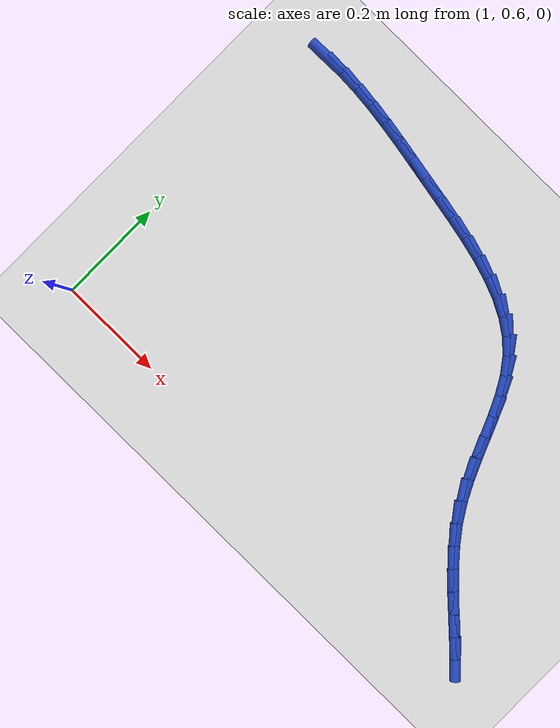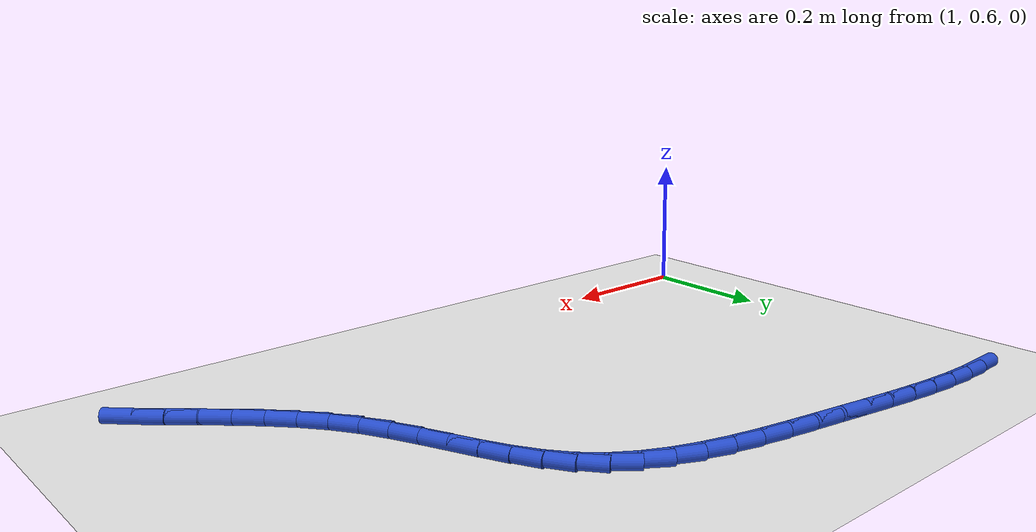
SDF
<sdf version="1.6">
 <world name="default">
  <model name="ground_plane">
   <static>1</static>
   <link name="link">
    <collision name="collision">
     <geometry><plane><normal>0 0 1</normal><size>100 100</size></plane></geometry>
     <surface><friction><ode><mu>100</mu><mu2>50</mu2></ode></friction></surface>
    </collision>
    <visual name="visual">
     <cast_shadows>0</cast_shadows>
     <geometry><plane><normal>0 0 1</normal><size>100 100</size></plane></geometry>
     <material>
      <script><uri>file://media/materials/scripts/gazebo.material</uri><name>Gazebo/WhiteGlow</name></script>
     </material>
    </visual>
   </link>
  </model>
  <model name="line">
   <link name="link_44">
    <pose>1.0340663692074799 1.2204611360111166 0.01 0 1.57 0.016741684028600965</pose>
    <collision name="collision">
     <geometry><cylinder><radius>0.01</radius><length>0.08</length></cylinder></geometry>
    </collision>
    <visual name="visual">
     <material>
      <script><name>Gazebo/Blue</name><uri>file://media/materials/scripts/gazebo.material</uri></script>
     </material>
     <geometry><cylinder><radius>0.01</radius><length>0.08</length></cylinder></geometry>
    </visual>
   </link>
   <link name="link_45">
    <pose>1.0718235762218329 1.2210933143050073 0.01 0 1.57 -0.04492203032472835</pose>
    <collision name="collision">
     <geometry><cylinder><radius>0.01</radius><length>0.08</length></cylinder></geometry>
    </collision>
    <visual name="visual">
     <material>
      <script><name>Gazebo/Blue</name><uri>file://media/materials/scripts/gazebo.material</uri></script>
     </material>
     <geometry><cylinder><radius>0.01</radius><length>0.08</length></cylinder></geometry>
    </visual>
   </link>
   <link name="link_46">
    <pose>1.1104504544521419 1.2193569483636206 0.01 0 1.57 -0.0938753605507853</pose>
    <collision name="collision">
     <geometry><cylinder><radius>0.01</radius><length>0.08</length></cylinder></geometry>
    </collision>
    <visual name="visual">
     <material>
      <script><name>Gazebo/Blue</name><uri>file://media/materials/scripts/gazebo.material</uri></script>
     </material>
     <geometry><cylinder><radius>0.01</radius><length>0.08</length></cylinder></geometry>
    </visual>
   </link>
   <link name="link_47">
    <pose>1.1498504941061134 1.2156473519855513 0.01 0 1.57 -0.13117724441278245</pose>
    <collision name="collision">
     <geometry><cylinder><radius>0.01</radius><length>0.08</length></cylinder></geometry>
    </collision>
    <visual name="visual">
     <material>
      <script><name>Gazebo/Blue</name><uri>file://media/materials/scripts/gazebo.material</uri></script>
     </material>
     <geometry><cylinder><radius>0.01</radius><length>0.08</length></cylinder></geometry>
    </visual>
   </link>
   <link name="link_48">
    <pose>1.1899271853914535 1.210359838969393 0.01 0 1.57 -0.1578163148414161</pose>
    <collision name="collision">
     <geometry><cylinder><radius>0.01</radius><length>0.08</length></cylinder></geometry>
    </collision>
    <visual name="visual">
     <material>
      <script><name>Gazebo/Blue</name><uri>file://media/materials/scripts/gazebo.material</uri></script>
     </material>
     <geometry><cylinder><radius>0.01</radius><length>0.08</length></cylinder></geometry>
    </visual>
   </link>
   <link name="link_49">
    <pose>1.2305840185158705 1.2038897231137407 0.01 0 1.57 -0.17460908920680784</pose>
    <collision name="collision">
     <geometry><cylinder><radius>0.01</radius><length>0.08</length></cylinder></geometry>
    </collision>
    <visual name="visual">
     <material>
      <script><name>Gazebo/Blue</name><uri>file://media/materials/scripts/gazebo.material</uri></script>
     </material>
     <geometry><cylinder><radius>0.01</radius><length>0.08</length></cylinder></geometry>
    </visual>
   </link>
   <link name="link_50">
    <pose>1.2717244836870691 1.1966323182171879 0.01 0 1.57 -0.18215809549075143</pose>
    <collision name="collision">
     <geometry><cylinder><radius>0.01</radius><length>0.08</length></cylinder></geometry>
    </collision>
    <visual name="visual">
     <material>
      <script><name>Gazebo/Blue</name><uri>file://media/materials/scripts/gazebo.material</uri></script>
     </material>
     <geometry><cylinder><radius>0.01</radius><length>0.08</length></cylinder></geometry>
    </visual>
   </link>
   <link name="link_51">
    <pose>1.3132520711127573 1.1889829380783292 0.01 0 1.57 -0.18146093318876846</pose>
    <collision name="collision">
     <geometry><cylinder><radius>0.01</radius><length>0.08</length></cylinder></geometry>
    </collision>
    <visual name="visual">
     <material>
      <script><name>Gazebo/Blue</name><uri>file://media/materials/scripts/gazebo.material</uri></script>
     </material>
     <geometry><cylinder><radius>0.01</radius><length>0.08</length></cylinder></geometry>
    </visual>
   </link>
   <link name="link_52">
    <pose>1.3550585231241778 1.1813123220194042 0.01 0 1.57 -0.1848133084151161</pose>
    <collision name="collision">
     <geometry><cylinder><radius>0.01</radius><length>0.08</length></cylinder></geometry>
    </collision>
    <visual name="visual">
     <material>
      <script><name>Gazebo/Blue</name><uri>file://media/materials/scripts/gazebo.material</uri></script>
     </material>
     <geometry><cylinder><radius>0.01</radius><length>0.08</length></cylinder></geometry>
    </visual>
   </link>
   <link name="link_53">
    <pose>1.3968045992586018 1.1735080342776658 0.01 0 1.57 -0.20357956919629636</pose>
    <collision name="collision">
     <geometry><cylinder><radius>0.01</radius><length>0.08</length></cylinder></geometry>
    </collision>
    <visual name="visual">
     <material>
      <script><name>Gazebo/Blue</name><uri>file://media/materials/scripts/gazebo.material</uri></script>
     </material>
     <geometry><cylinder><radius>0.01</radius><length>0.08</length></cylinder></geometry>
    </visual>
   </link>
   <link name="link_54">
    <pose>1.437939967465345 1.165016072884515 0.01 0 1.57 -0.23927705951594538</pose>
    <collision name="collision">
     <geometry><cylinder><radius>0.01</radius><length>0.08</length></cylinder></geometry>
    </collision>
    <visual name="visual">
     <material>
      <script><name>Gazebo/Blue</name><uri>file://media/materials/scripts/gazebo.material</uri></script>
     </material>
     <geometry><cylinder><radius>0.01</radius><length>0.08</length></cylinder></geometry>
    </visual>
   </link>
   <link name="link_55">
    <pose>1.477906536174173 1.1552662043310993 0.01 0 1.57 -0.2940004978064411</pose>
    <collision name="collision">
     <geometry><cylinder><radius>0.01</radius><length>0.08</length></cylinder></geometry>
    </collision>
    <visual name="visual">
     <material>
      <script><name>Gazebo/Blue</name><uri>file://media/materials/scripts/gazebo.material</uri></script>
     </material>
     <geometry><cylinder><radius>0.01</radius><length>0.08</length></cylinder></geometry>
    </visual>
   </link>
   <link name="link_56">
    <pose>1.5161462138148498 1.1436881951085685 0.01 0 1.57 -0.3707463746853357</pose>
    <collision name="collision">
     <geometry><cylinder><radius>0.01</radius><length>0.08</length></cylinder></geometry>
    </collision>
    <visual name="visual">
     <material>
      <script><name>Gazebo/Blue</name><uri>file://media/materials/scripts/gazebo.material</uri></script>
     </material>
     <geometry><cylinder><radius>0.01</radius><length>0.08</length></cylinder></geometry>
    </visual>
   </link>
   <link name="link_57">
    <pose>1.552100908817142 1.12971181170807 0.01 0 1.57 -0.47300621422693206</pose>
    <collision name="collision">
     <geometry><cylinder><radius>0.01</radius><length>0.08</length></cylinder></geometry>
    </collision>
    <visual name="visual">
     <material>
      <script><name>Gazebo/Blue</name><uri>file://media/materials/scripts/gazebo.material</uri></script>
     </material>
     <geometry><cylinder><radius>0.01</radius><length>0.08</length></cylinder></geometry>
    </visual>
   </link>
   <link name="link_58">
    <pose>1.585212529610816 1.1127668206207537 0.01 0 1.57 -0.6036093452666672</pose>
    <collision name="collision">
     <geometry><cylinder><radius>0.01</radius><length>0.08</length></cylinder></geometry>
    </collision>
    <visual name="visual">
     <material>
      <script><name>Gazebo/Blue</name><uri>file://media/materials/scripts/gazebo.material</uri></script>
     </material>
     <geometry><cylinder><radius>0.01</radius><length>0.08</length></cylinder></geometry>
    </visual>
   </link>
   <link name="link_59">
    <pose>1.6149229846256352 1.092282988337768 0.01 0 1.57 -0.7622111997289494</pose>
    <collision name="collision">
     <geometry><cylinder><radius>0.01</radius><length>0.08</length></cylinder></geometry>
    </collision>
    <visual name="visual">
     <material>
      <script><name>Gazebo/Blue</name><uri>file://media/materials/scripts/gazebo.material</uri></script>
     </material>
     <geometry><cylinder><radius>0.01</radius><length>0.08</length></cylinder></geometry>
    </visual>
   </link>
   <link name="link_60">
    <pose>1.6406790133723932 1.0676945052042912 0.01 0 1.57 -0.9235636580012856</pose>
    <collision name="collision">
     <geometry><cylinder><radius>0.01</radius><length>0.08</length></cylinder></geometry>
    </collision>
    <visual name="visual">
     <material>
      <script><name>Gazebo/Blue</name><uri>file://media/materials/scripts/gazebo.material</uri></script>
     </material>
     <geometry><cylinder><radius>0.01</radius><length>0.08</length></cylinder></geometry>
    </visual>
   </link>
   <link name="link_61">
    <pose>1.6624396914387491 1.0389047112249352 0.01 0 1.57 -1.0451921639659627</pose>
    <collision name="collision">
     <geometry><cylinder><radius>0.01</radius><length>0.08</length></cylinder></geometry>
    </collision>
    <visual name="visual">
     <material>
      <script><name>Gazebo/Blue</name><uri>file://media/materials/scripts/gazebo.material</uri></script>
     </material>
     <geometry><cylinder><radius>0.01</radius><length>0.08</length></cylinder></geometry>
    </visual>
   </link>
   <link name="link_62">
    <pose>1.6811224693581241 1.006694536915134 0.01 0 1.57 -1.124542460160288</pose>
    <collision name="collision">
     <geometry><cylinder><radius>0.01</radius><length>0.08</length></cylinder></geometry>
    </collision>
    <visual name="visual">
     <material>
      <script><name>Gazebo/Blue</name><uri>file://media/materials/scripts/gazebo.material</uri></script>
     </material>
     <geometry><cylinder><radius>0.01</radius><length>0.08</length></cylinder></geometry>
    </visual>
   </link>
   <link name="link_63">
    <pose>1.6977499595748178 0.9719412102733669 0.01 0 1.57 -1.166216248263176</pose>
    <collision name="collision">
     <geometry><cylinder><radius>0.01</radius><length>0.08</length></cylinder></geometry>
    </collision>
    <visual name="visual">
     <material>
      <script><name>Gazebo/Blue</name><uri>file://media/materials/scripts/gazebo.material</uri></script>
     </material>
     <geometry><cylinder><radius>0.01</radius><length>0.08</length></cylinder></geometry>
    </visual>
   </link>
   <link name="link_64">
    <pose>1.7133447745331327 0.9355219592981138 0.01 0 1.57 -1.1741416441638826</pose>
    <collision name="collision">
     <geometry><cylinder><radius>0.01</radius><length>0.08</length></cylinder></geometry>
    </collision>
    <visual name="visual">
     <material>
      <script><name>Gazebo/Blue</name><uri>file://media/materials/scripts/gazebo.material</uri></script>
     </material>
     <geometry><cylinder><radius>0.01</radius><length>0.08</length></cylinder></geometry>
    </visual>
   </link>
   <link name="link_65">
    <pose>1.7289295266773694 0.8983140119878538 0.01 0 1.57 -1.150329468562992</pose>
    <collision name="collision">
     <geometry><cylinder><radius>0.01</radius><length>0.08</length></cylinder></geometry>
    </collision>
    <visual name="visual">
     <material>
      <script><name>Gazebo/Blue</name><uri>file://media/materials/scripts/gazebo.material</uri></script>
     </material>
     <geometry><cylinder><radius>0.01</radius><length>0.08</length></cylinder></geometry>
    </visual>
   </link>
   <link name="link_66">
    <pose>1.7455268284518297 0.8611945963410655 0.01 0 1.57 -1.0949294617589251</pose>
    <collision name="collision">
     <geometry><cylinder><radius>0.01</radius><length>0.08</length></cylinder></geometry>
    </collision>
    <visual name="visual">
     <material>
      <script><name>Gazebo/Blue</name><uri>file://media/materials/scripts/gazebo.material</uri></script>
     </material>
     <geometry><cylinder><radius>0.01</radius><length>0.08</length></cylinder></geometry>
    </visual>
   </link>
   <link name="link_67">
    <pose>1.7641592923008145 0.8250409403562292 0.01 0 1.57 -1.008140166666022</pose>
    <collision name="collision">
     <geometry><cylinder><radius>0.01</radius><length>0.08</length></cylinder></geometry>
    </collision>
    <visual name="visual">
     <material>
      <script><name>Gazebo/Blue</name><uri>file://media/materials/scripts/gazebo.material</uri></script>
     </material>
     <geometry><cylinder><radius>0.01</radius><length>0.08</length></cylinder></geometry>
    </visual>
   </link>
   <link name="link_68">
    <pose>1.7858133427315341 0.790705180252187 0.01 0 1.57 -0.9154972815583415</pose>
    <collision name="collision">
     <geometry><cylinder><radius>0.01</radius><length>0.08</length></cylinder></geometry>
    </collision>
    <visual name="visual">
     <material>
      <script><name>Gazebo/Blue</name><uri>file://media/materials/scripts/gazebo.material</uri></script>
     </material>
     <geometry><cylinder><radius>0.01</radius><length>0.08</length></cylinder></geometry>
    </visual>
   </link>
   <link name="link_69">
    <pose>1.8106118329384353 0.7584406742343712 0.01 0 1.57 -0.8436408665322391</pose>
    <collision name="collision">
     <geometry><cylinder><radius>0.01</radius><length>0.08</length></cylinder></geometry>
    </collision>
    <visual name="visual">
     <material>
      <script><name>Gazebo/Blue</name><uri>file://media/materials/scripts/gazebo.material</uri></script>
     </material>
     <geometry><cylinder><radius>0.01</radius><length>0.08</length></cylinder></geometry>
    </visual>
   </link>
   <link name="link_70">
    <pose>1.8377963191445261 0.7278897119815277 0.01 0 1.57 -0.7931637497516063</pose>
    <collision name="collision">
     <geometry><cylinder><radius>0.01</radius><length>0.08</length></cylinder></geometry>
    </collision>
    <visual name="visual">
     <material>
      <script><name>Gazebo/Blue</name><uri>file://media/materials/scripts/gazebo.material</uri></script>
     </material>
     <geometry><cylinder><radius>0.01</radius><length>0.08</length></cylinder></geometry>
    </visual>
   </link>
   <link name="link_71">
    <pose>1.8665686240451944 0.6986670329719905 0.01 0 1.57 -0.763232802464028</pose>
    <collision name="collision">
     <geometry><cylinder><radius>0.01</radius><length>0.08</length></cylinder></geometry>
    </collision>
    <visual name="visual">
     <material>
      <script><name>Gazebo/Blue</name><uri>file://media/materials/scripts/gazebo.material</uri></script>
     </material>
     <geometry><cylinder><radius>0.01</radius><length>0.08</length></cylinder></geometry>
    </visual>
   </link>
   <link name="link_72">
    <pose>1.8961305703358267 0.6703873766840953 0.01 0 1.57 -0.7534316393878276</pose>
    <collision name="collision">
     <geometry><cylinder><radius>0.01</radius><length>0.08</length></cylinder></geometry>
    </collision>
    <visual name="visual">
     <material>
      <script><name>Gazebo/Blue</name><uri>file://media/materials/scripts/gazebo.material</uri></script>
     </material>
     <geometry><cylinder><radius>0.01</radius><length>0.08</length></cylinder></geometry>
    </visual>
   </link>
   <link name="link_73">
    <pose>1.9256839807118105 0.6426654825961767 0.01 0 1.57 -0.7641333778552992</pose>
    <collision name="collision">
     <geometry><cylinder><radius>0.01</radius><length>0.08</length></cylinder></geometry>
    </collision>
    <visual name="visual">
     <material>
      <script><name>Gazebo/Blue</name><uri>file://media/materials/scripts/gazebo.material</uri></script>
     </material>
     <geometry><cylinder><radius>0.01</radius><length>0.08</length></cylinder></geometry>
    </visual>
   </link>
   <link name="link_74">
    <pose>1.9544306778685336 0.6151160901865691 0.01 0 1.57 -0.7966964057838352</pose>
    <collision name="collision">
     <geometry><cylinder><radius>0.01</radius><length>0.08</length></cylinder></geometry>
    </collision>
    <visual name="visual">
     <material>
      <script><name>Gazebo/Blue</name><uri>file://media/materials/scripts/gazebo.material</uri></script>
     </material>
     <geometry><cylinder><radius>0.01</radius><length>0.08</length></cylinder></geometry>
    </visual>
   </link>
  </model>
 </world>
</sdf>
